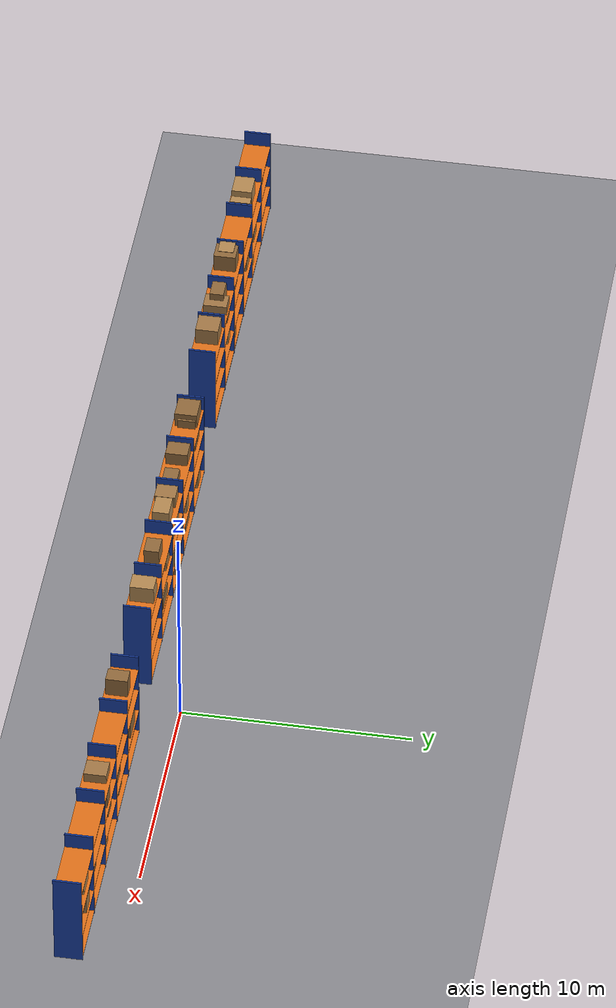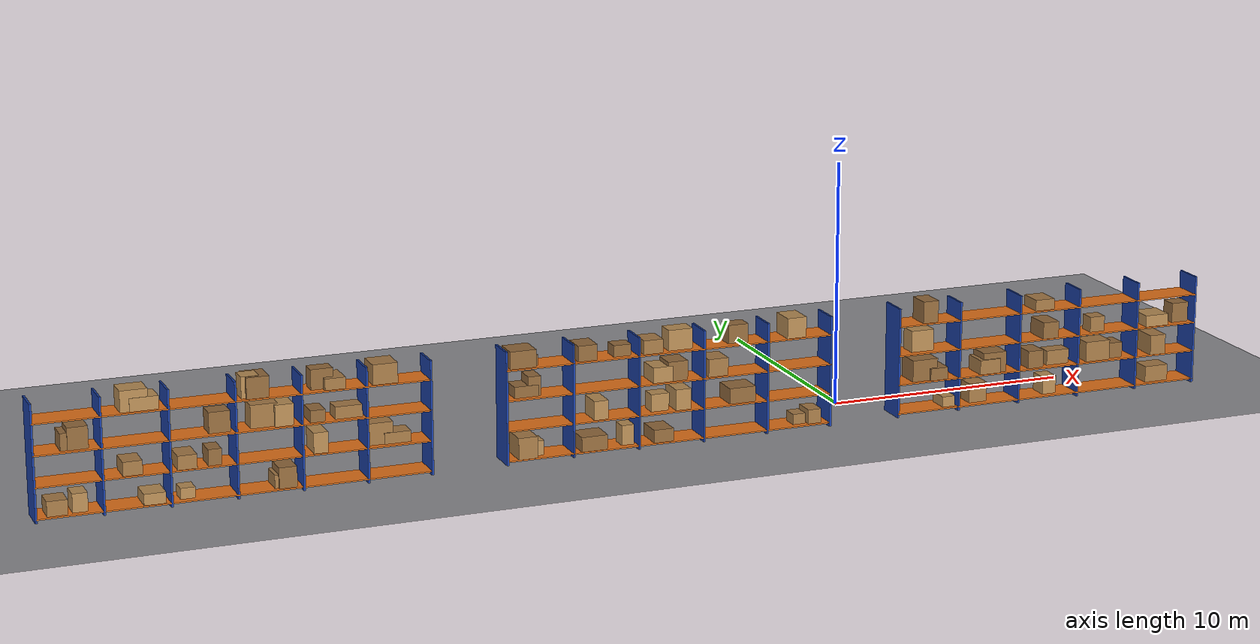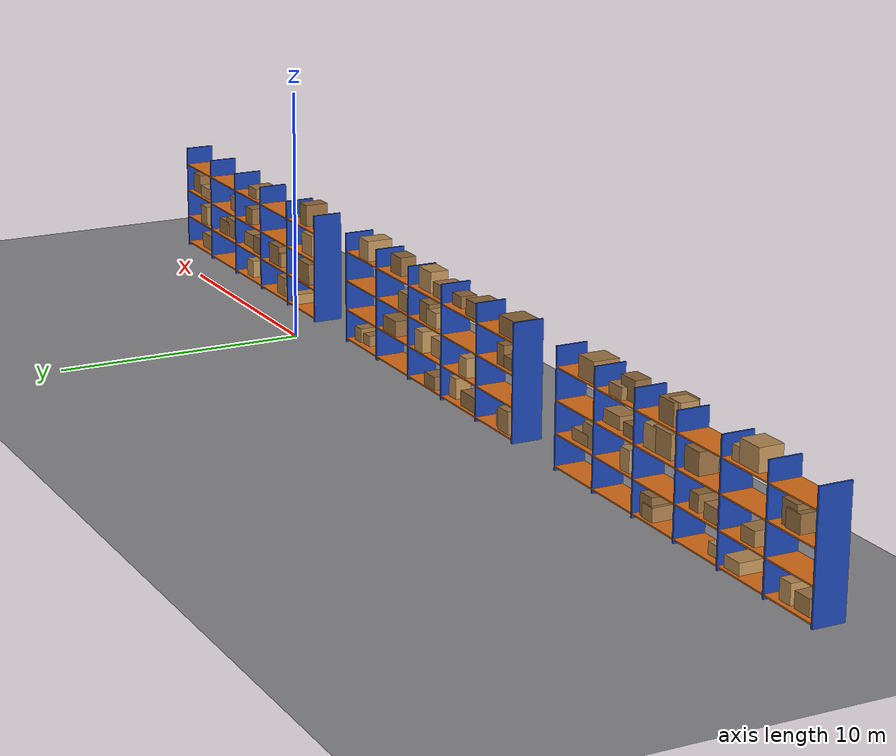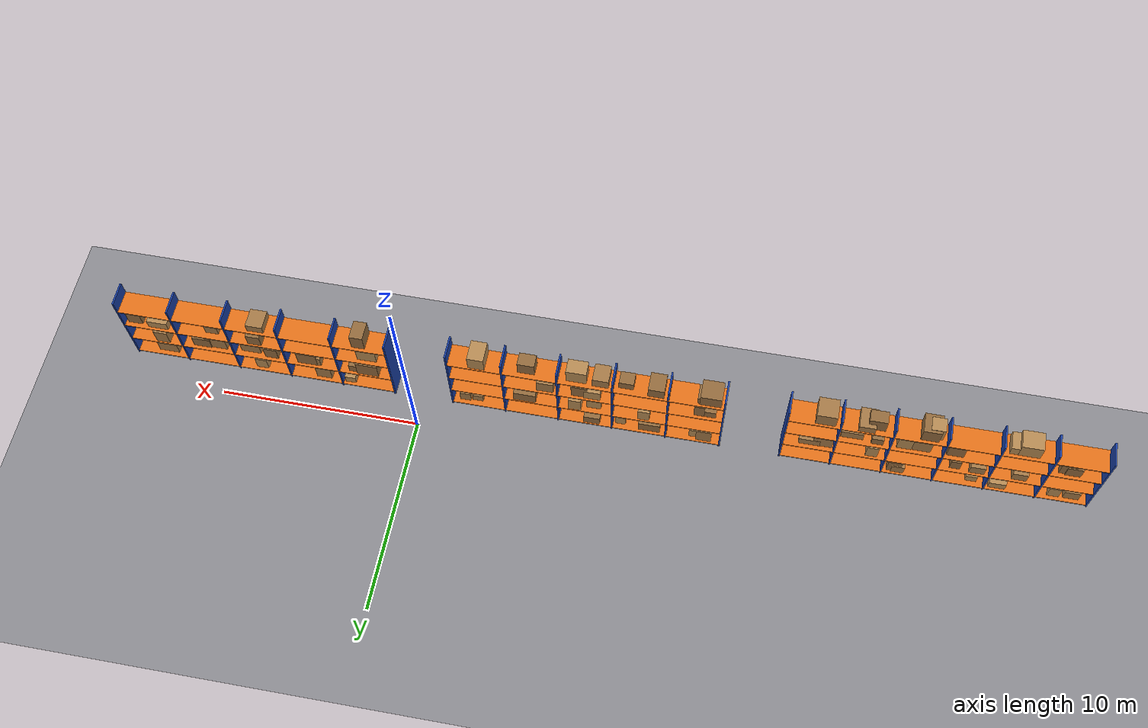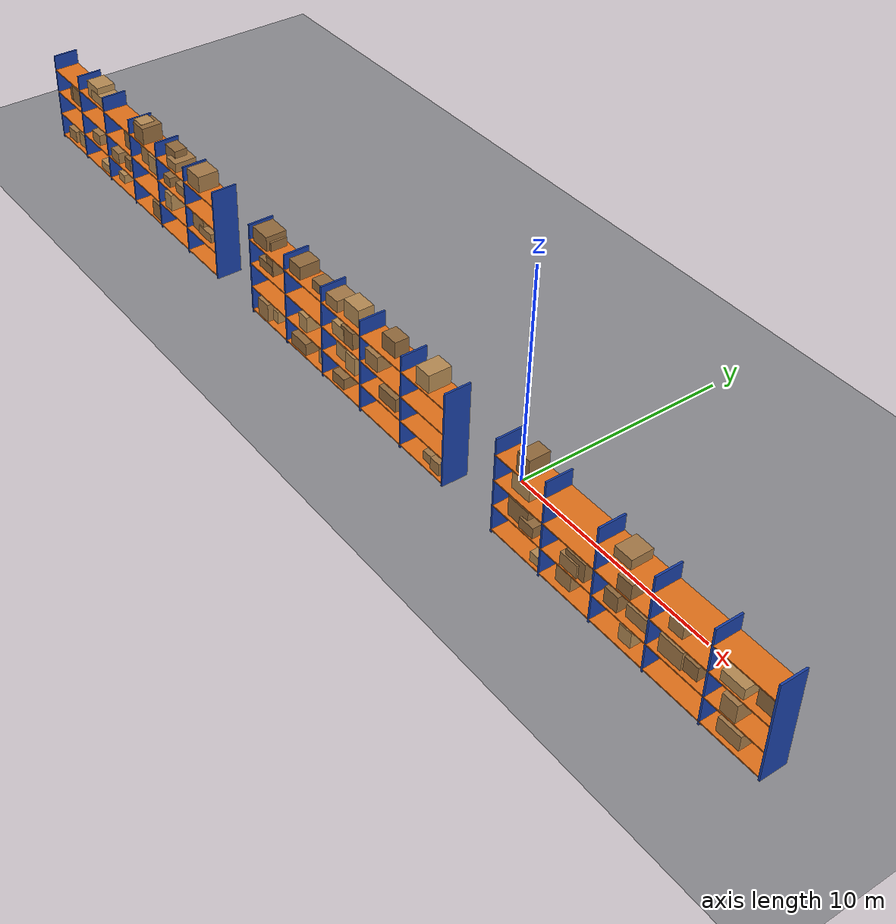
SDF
<sdf version="1.9">
 <world name="warehouse">
  <model name="ground_plane">
   <static>true</static>
   <link name="link">
    <collision name="collision">
     <geometry><plane><normal>0 0 1</normal><size>1 1</size></plane></geometry>
    </collision>
    <visual name="visual">
     <geometry><plane><normal>0 0 1</normal><size>200 100</size></plane></geometry>
     <material>
      <ambient>0.55 0.55 0.57 1</ambient>
      <diffuse>0.55 0.55 0.57 1</diffuse>
      <specular>0.1 0.1 0.1 1</specular>
     </material>
    </visual>
   </link>
  </model>
  <model name="rack12">
   <static>true</static>
   <link name="link">
    <collision name="up0_c">
     <pose>-33.000 -2.100 2.250 0 0 0</pose>
     <geometry><box><size>0.080 1.200 4.500</size></box></geometry>
    </collision>
    <visual name="up0_v">
     <pose>-33.000 -2.100 2.250 0 0 0</pose>
     <geometry><box><size>0.080 1.200 4.500</size></box></geometry>
     <material>
      <ambient>0.1 0.25 0.65 1</ambient>
      <diffuse>0.1 0.25 0.65 1</diffuse>
      <specular>0.1 0.1 0.1 1</specular>
     </material>
    </visual>
    <collision name="up1_c">
     <pose>-30.500 -2.100 2.250 0 0 0</pose>
     <geometry><box><size>0.080 1.200 4.500</size></box></geometry>
    </collision>
    <visual name="up1_v">
     <pose>-30.500 -2.100 2.250 0 0 0</pose>
     <geometry><box><size>0.080 1.200 4.500</size></box></geometry>
     <material>
      <ambient>0.1 0.25 0.65 1</ambient>
      <diffuse>0.1 0.25 0.65 1</diffuse>
      <specular>0.1 0.1 0.1 1</specular>
     </material>
    </visual>
    <collision name="up2_c">
     <pose>-28.000 -2.100 2.250 0 0 0</pose>
     <geometry><box><size>0.080 1.200 4.500</size></box></geometry>
    </collision>
    <visual name="up2_v">
     <pose>-28.000 -2.100 2.250 0 0 0</pose>
     <geometry><box><size>0.080 1.200 4.500</size></box></geometry>
     <material>
      <ambient>0.1 0.25 0.65 1</ambient>
      <diffuse>0.1 0.25 0.65 1</diffuse>
      <specular>0.1 0.1 0.1 1</specular>
     </material>
    </visual>
    <collision name="up3_c">
     <pose>-25.500 -2.100 2.250 0 0 0</pose>
     <geometry><box><size>0.080 1.200 4.500</size></box></geometry>
    </collision>
    <visual name="up3_v">
     <pose>-25.500 -2.100 2.250 0 0 0</pose>
     <geometry><box><size>0.080 1.200 4.500</size></box></geometry>
     <material>
      <ambient>0.1 0.25 0.65 1</ambient>
      <diffuse>0.1 0.25 0.65 1</diffuse>
      <specular>0.1 0.1 0.1 1</specular>
     </material>
    </visual>
    <collision name="up4_c">
     <pose>-23.000 -2.100 2.250 0 0 0</pose>
     <geometry><box><size>0.080 1.200 4.500</size></box></geometry>
    </collision>
    <visual name="up4_v">
     <pose>-23.000 -2.100 2.250 0 0 0</pose>
     <geometry><box><size>0.080 1.200 4.500</size></box></geometry>
     <material>
      <ambient>0.1 0.25 0.65 1</ambient>
      <diffuse>0.1 0.25 0.65 1</diffuse>
      <specular>0.1 0.1 0.1 1</specular>
     </material>
    </visual>
    <collision name="up5_c">
     <pose>-20.500 -2.100 2.250 0 0 0</pose>
     <geometry><box><size>0.080 1.200 4.500</size></box></geometry>
    </collision>
    <visual name="up5_v">
     <pose>-20.500 -2.100 2.250 0 0 0</pose>
     <geometry><box><size>0.080 1.200 4.500</size></box></geometry>
     <material>
      <ambient>0.1 0.25 0.65 1</ambient>
      <diffuse>0.1 0.25 0.65 1</diffuse>
      <specular>0.1 0.1 0.1 1</specular>
     </material>
    </visual>
    <collision name="up6_c">
     <pose>-18.000 -2.100 2.250 0 0 0</pose>
     <geometry><box><size>0.080 1.200 4.500</size></box></geometry>
    </collision>
    <visual name="up6_v">
     <pose>-18.000 -2.100 2.250 0 0 0</pose>
     <geometry><box><size>0.080 1.200 4.500</size></box></geometry>
     <material>
      <ambient>0.1 0.25 0.65 1</ambient>
      <diffuse>0.1 0.25 0.65 1</diffuse>
      <specular>0.1 0.1 0.1 1</specular>
     </material>
    </visual>
    <collision name="sh0_c">
     <pose>-25.500 -2.100 0.150 0 0 0</pose>
     <geometry><box><size>15.000 1.200 0.050</size></box></geometry>
    </collision>
    <visual name="sh0_v">
     <pose>-25.500 -2.100 0.150 0 0 0</pose>
     <geometry><box><size>15.000 1.200 0.050</size></box></geometry>
     <material>
      <ambient>0.9 0.45 0.1 1</ambient>
      <diffuse>0.9 0.45 0.1 1</diffuse>
      <specular>0.1 0.1 0.1 1</specular>
     </material>
    </visual>
    <collision name="sh1_c">
     <pose>-25.500 -2.100 1.350 0 0 0</pose>
     <geometry><box><size>15.000 1.200 0.050</size></box></geometry>
    </collision>
    <visual name="sh1_v">
     <pose>-25.500 -2.100 1.350 0 0 0</pose>
     <geometry><box><size>15.000 1.200 0.050</size></box></geometry>
     <material>
      <ambient>0.9 0.45 0.1 1</ambient>
      <diffuse>0.9 0.45 0.1 1</diffuse>
      <specular>0.1 0.1 0.1 1</specular>
     </material>
    </visual>
    <collision name="sh2_c">
     <pose>-25.500 -2.100 2.550 0 0 0</pose>
     <geometry><box><size>15.000 1.200 0.050</size></box></geometry>
    </collision>
    <visual name="sh2_v">
     <pose>-25.500 -2.100 2.550 0 0 0</pose>
     <geometry><box><size>15.000 1.200 0.050</size></box></geometry>
     <material>
      <ambient>0.9 0.45 0.1 1</ambient>
      <diffuse>0.9 0.45 0.1 1</diffuse>
      <specular>0.1 0.1 0.1 1</specular>
     </material>
    </visual>
    <collision name="sh3_c">
     <pose>-25.500 -2.100 3.750 0 0 0</pose>
     <geometry><box><size>15.000 1.200 0.050</size></box></geometry>
    </collision>
    <visual name="sh3_v">
     <pose>-25.500 -2.100 3.750 0 0 0</pose>
     <geometry><box><size>15.000 1.200 0.050</size></box></geometry>
     <material>
      <ambient>0.9 0.45 0.1 1</ambient>
      <diffuse>0.9 0.45 0.1 1</diffuse>
      <specular>0.1 0.1 0.1 1</specular>
     </material>
    </visual>
    <collision name="c0_c">
     <pose>-31.344 -2.088 0.539 0 0 0</pose>
     <geometry><box><size>0.571 0.790 0.727</size></box></geometry>
    </collision>
    <visual name="c0_v">
     <pose>-31.344 -2.088 0.539 0 0 0</pose>
     <geometry><box><size>0.571 0.790 0.727</size></box></geometry>
     <material>
      <ambient>0.72 0.55 0.33 1</ambient>
      <diffuse>0.72 0.55 0.33 1</diffuse>
      <specular>0.1 0.1 0.1 1</specular>
     </material>
    </visual>
    <collision name="c1_c">
     <pose>-32.199 -2.141 0.466 0 0 0</pose>
     <geometry><box><size>0.770 0.867 0.582</size></box></geometry>
    </collision>
    <visual name="c1_v">
     <pose>-32.199 -2.141 0.466 0 0 0</pose>
     <geometry><box><size>0.770 0.867 0.582</size></box></geometry>
     <material>
      <ambient>0.65 0.48 0.28 1</ambient>
      <diffuse>0.65 0.48 0.28 1</diffuse>
      <specular>0.1 0.1 0.1 1</specular>
     </material>
    </visual>
    <collision name="c2_c">
     <pose>-31.604 -2.091 2.905 0 0 0</pose>
     <geometry><box><size>0.738 0.838 0.661</size></box></geometry>
    </collision>
    <visual name="c2_v">
     <pose>-31.604 -2.091 2.905 0 0 0</pose>
     <geometry><box><size>0.738 0.838 0.661</size></box></geometry>
     <material>
      <ambient>0.58 0.42 0.24 1</ambient>
      <diffuse>0.58 0.42 0.24 1</diffuse>
      <specular>0.1 0.1 0.1 1</specular>
     </material>
    </visual>
    <collision name="c3_c">
     <pose>-31.328 -2.133 3.003 0 0 0</pose>
     <geometry><box><size>0.770 0.795 0.856</size></box></geometry>
    </collision>
    <visual name="c3_v">
     <pose>-31.328 -2.133 3.003 0 0 0</pose>
     <geometry><box><size>0.770 0.795 0.856</size></box></geometry>
     <material>
      <ambient>0.58 0.42 0.24 1</ambient>
      <diffuse>0.58 0.42 0.24 1</diffuse>
      <specular>0.1 0.1 0.1 1</specular>
     </material>
    </visual>
    <collision name="c4_c">
     <pose>-28.622 -2.127 0.391 0 0 0</pose>
     <geometry><box><size>0.834 0.999 0.432</size></box></geometry>
    </collision>
    <visual name="c4_v">
     <pose>-28.622 -2.127 0.391 0 0 0</pose>
     <geometry><box><size>0.834 0.999 0.432</size></box></geometry>
     <material>
      <ambient>0.72 0.55 0.33 1</ambient>
      <diffuse>0.72 0.55 0.33 1</diffuse>
      <specular>0.1 0.1 0.1 1</specular>
     </material>
    </visual>
    <collision name="c5_c">
     <pose>-29.392 -2.117 1.645 0 0 0</pose>
     <geometry><box><size>0.733 0.974 0.539</size></box></geometry>
    </collision>
    <visual name="c5_v">
     <pose>-29.392 -2.117 1.645 0 0 0</pose>
     <geometry><box><size>0.733 0.974 0.539</size></box></geometry>
     <material>
      <ambient>0.65 0.48 0.28 1</ambient>
      <diffuse>0.65 0.48 0.28 1</diffuse>
      <specular>0.1 0.1 0.1 1</specular>
     </material>
    </visual>
    <collision name="c6_c">
     <pose>-29.243 -2.118 4.189 0 0 0</pose>
     <geometry><box><size>1.030 0.907 0.828</size></box></geometry>
    </collision>
    <visual name="c6_v">
     <pose>-29.243 -2.118 4.189 0 0 0</pose>
     <geometry><box><size>1.030 0.907 0.828</size></box></geometry>
     <material>
      <ambient>0.72 0.55 0.33 1</ambient>
      <diffuse>0.72 0.55 0.33 1</diffuse>
      <specular>0.1 0.1 0.1 1</specular>
     </material>
    </visual>
    <collision name="c7_c">
     <pose>-28.871 -2.128 4.031 0 0 0</pose>
     <geometry><box><size>1.083 0.906 0.512</size></box></geometry>
    </collision>
    <visual name="c7_v">
     <pose>-28.871 -2.128 4.031 0 0 0</pose>
     <geometry><box><size>1.083 0.906 0.512</size></box></geometry>
     <material>
      <ambient>0.72 0.55 0.33 1</ambient>
      <diffuse>0.72 0.55 0.33 1</diffuse>
      <specular>0.1 0.1 0.1 1</specular>
     </material>
    </visual>
    <collision name="c8_c">
     <pose>-27.355 -2.113 0.388 0 0 0</pose>
     <geometry><box><size>0.562 0.651 0.426</size></box></geometry>
    </collision>
    <visual name="c8_v">
     <pose>-27.355 -2.113 0.388 0 0 0</pose>
     <geometry><box><size>0.562 0.651 0.426</size></box></geometry>
     <material>
      <ambient>0.72 0.55 0.33 1</ambient>
      <diffuse>0.72 0.55 0.33 1</diffuse>
      <specular>0.1 0.1 0.1 1</specular>
     </material>
    </visual>
    <collision name="c9_c">
     <pose>-26.319 -2.120 1.686 0 0 0</pose>
     <geometry><box><size>0.508 0.844 0.623</size></box></geometry>
    </collision>
    <visual name="c9_v">
     <pose>-26.319 -2.120 1.686 0 0 0</pose>
     <geometry><box><size>0.508 0.844 0.623</size></box></geometry>
     <material>
      <ambient>0.58 0.42 0.24 1</ambient>
      <diffuse>0.58 0.42 0.24 1</diffuse>
      <specular>0.1 0.1 0.1 1</specular>
     </material>
    </visual>
    <collision name="c10_c">
     <pose>-27.377 -2.132 1.647 0 0 0</pose>
     <geometry><box><size>0.732 1.025 0.545</size></box></geometry>
    </collision>
    <visual name="c10_v">
     <pose>-27.377 -2.132 1.647 0 0 0</pose>
     <geometry><box><size>0.732 1.025 0.545</size></box></geometry>
     <material>
      <ambient>0.65 0.48 0.28 1</ambient>
      <diffuse>0.65 0.48 0.28 1</diffuse>
      <specular>0.1 0.1 0.1 1</specular>
     </material>
    </visual>
    <collision name="c11_c">
     <pose>-26.083 -2.094 2.981 0 0 0</pose>
     <geometry><box><size>0.822 0.758 0.812</size></box></geometry>
    </collision>
    <visual name="c11_v">
     <pose>-26.083 -2.094 2.981 0 0 0</pose>
     <geometry><box><size>0.822 0.758 0.812</size></box></geometry>
     <material>
      <ambient>0.58 0.42 0.24 1</ambient>
      <diffuse>0.58 0.42 0.24 1</diffuse>
      <specular>0.1 0.1 0.1 1</specular>
     </material>
    </visual>
    <collision name="c12_c">
     <pose>-23.595 -2.133 0.581 0 0 0</pose>
     <geometry><box><size>0.694 0.946 0.812</size></box></geometry>
    </collision>
    <visual name="c12_v">
     <pose>-23.595 -2.133 0.581 0 0 0</pose>
     <geometry><box><size>0.694 0.946 0.812</size></box></geometry>
     <material>
      <ambient>0.58 0.42 0.24 1</ambient>
      <diffuse>0.58 0.42 0.24 1</diffuse>
      <specular>0.1 0.1 0.1 1</specular>
     </material>
    </visual>
    <collision name="c13_c">
     <pose>-23.779 -2.059 0.436 0 0 0</pose>
     <geometry><box><size>0.620 0.897 0.523</size></box></geometry>
    </collision>
    <visual name="c13_v">
     <pose>-23.779 -2.059 0.436 0 0 0</pose>
     <geometry><box><size>0.620 0.897 0.523</size></box></geometry>
     <material>
      <ambient>0.65 0.48 0.28 1</ambient>
      <diffuse>0.65 0.48 0.28 1</diffuse>
      <specular>0.1 0.1 0.1 1</specular>
     </material>
    </visual>
    <collision name="c14_c">
     <pose>-23.659 -2.129 2.995 0 0 0</pose>
     <geometry><box><size>0.716 0.900 0.840</size></box></geometry>
    </collision>
    <visual name="c14_v">
     <pose>-23.659 -2.129 2.995 0 0 0</pose>
     <geometry><box><size>0.716 0.900 0.840</size></box></geometry>
     <material>
      <ambient>0.72 0.55 0.33 1</ambient>
      <diffuse>0.72 0.55 0.33 1</diffuse>
      <specular>0.1 0.1 0.1 1</specular>
     </material>
    </visual>
    <collision name="c15_c">
     <pose>-24.395 -2.073 3.024 0 0 0</pose>
     <geometry><box><size>1.044 0.757 0.898</size></box></geometry>
    </collision>
    <visual name="c15_v">
     <pose>-24.395 -2.073 3.024 0 0 0</pose>
     <geometry><box><size>1.044 0.757 0.898</size></box></geometry>
     <material>
      <ambient>0.65 0.48 0.28 1</ambient>
      <diffuse>0.65 0.48 0.28 1</diffuse>
      <specular>0.1 0.1 0.1 1</specular>
     </material>
    </visual>
    <collision name="c16_c">
     <pose>-24.649 -2.143 4.185 0 0 0</pose>
     <geometry><box><size>0.863 0.990 0.820</size></box></geometry>
    </collision>
    <visual name="c16_v">
     <pose>-24.649 -2.143 4.185 0 0 0</pose>
     <geometry><box><size>0.863 0.990 0.820</size></box></geometry>
     <material>
      <ambient>0.58 0.42 0.24 1</ambient>
      <diffuse>0.58 0.42 0.24 1</diffuse>
      <specular>0.1 0.1 0.1 1</specular>
     </material>
    </visual>
    <collision name="c17_c">
     <pose>-24.900 -2.150 4.193 0 0 0</pose>
     <geometry><box><size>0.692 0.702 0.836</size></box></geometry>
    </collision>
    <visual name="c17_v">
     <pose>-24.900 -2.150 4.193 0 0 0</pose>
     <geometry><box><size>0.692 0.702 0.836</size></box></geometry>
     <material>
      <ambient>0.72 0.55 0.33 1</ambient>
      <diffuse>0.72 0.55 0.33 1</diffuse>
      <specular>0.1 0.1 0.1 1</specular>
     </material>
    </visual>
    <collision name="c18_c">
     <pose>-22.306 -2.116 1.779 0 0 0</pose>
     <geometry><box><size>0.567 0.995 0.809</size></box></geometry>
    </collision>
    <visual name="c18_v">
     <pose>-22.306 -2.116 1.779 0 0 0</pose>
     <geometry><box><size>0.567 0.995 0.809</size></box></geometry>
     <material>
      <ambient>0.72 0.55 0.33 1</ambient>
      <diffuse>0.72 0.55 0.33 1</diffuse>
      <specular>0.1 0.1 0.1 1</specular>
     </material>
    </visual>
    <collision name="c19_c">
     <pose>-21.170 -2.134 2.815 0 0 0</pose>
     <geometry><box><size>1.065 0.704 0.479</size></box></geometry>
    </collision>
    <visual name="c19_v">
     <pose>-21.170 -2.134 2.815 0 0 0</pose>
     <geometry><box><size>1.065 0.704 0.479</size></box></geometry>
     <material>
      <ambient>0.65 0.48 0.28 1</ambient>
      <diffuse>0.65 0.48 0.28 1</diffuse>
      <specular>0.1 0.1 0.1 1</specular>
     </material>
    </visual>
    <collision name="c20_c">
     <pose>-22.383 -2.117 2.807 0 0 0</pose>
     <geometry><box><size>0.572 0.892 0.465</size></box></geometry>
    </collision>
    <visual name="c20_v">
     <pose>-22.383 -2.117 2.807 0 0 0</pose>
     <geometry><box><size>0.572 0.892 0.465</size></box></geometry>
     <material>
      <ambient>0.58 0.42 0.24 1</ambient>
      <diffuse>0.58 0.42 0.24 1</diffuse>
      <specular>0.1 0.1 0.1 1</specular>
     </material>
    </visual>
    <collision name="c21_c">
     <pose>-22.145 -2.081 4.170 0 0 0</pose>
     <geometry><box><size>0.857 0.610 0.790</size></box></geometry>
    </collision>
    <visual name="c21_v">
     <pose>-22.145 -2.081 4.170 0 0 0</pose>
     <geometry><box><size>0.857 0.610 0.790</size></box></geometry>
     <material>
      <ambient>0.58 0.42 0.24 1</ambient>
      <diffuse>0.58 0.42 0.24 1</diffuse>
      <specular>0.1 0.1 0.1 1</specular>
     </material>
    </visual>
    <collision name="c22_c">
     <pose>-21.700 -2.094 3.997 0 0 0</pose>
     <geometry><box><size>0.793 1.061 0.445</size></box></geometry>
    </collision>
    <visual name="c22_v">
     <pose>-21.700 -2.094 3.997 0 0 0</pose>
     <geometry><box><size>0.793 1.061 0.445</size></box></geometry>
     <material>
      <ambient>0.65 0.48 0.28 1</ambient>
      <diffuse>0.65 0.48 0.28 1</diffuse>
      <specular>0.1 0.1 0.1 1</specular>
     </material>
    </visual>
    <collision name="c23_c">
     <pose>-19.281 -2.097 1.591 0 0 0</pose>
     <geometry><box><size>1.036 0.774 0.432</size></box></geometry>
    </collision>
    <visual name="c23_v">
     <pose>-19.281 -2.097 1.591 0 0 0</pose>
     <geometry><box><size>1.036 0.774 0.432</size></box></geometry>
     <material>
      <ambient>0.65 0.48 0.28 1</ambient>
      <diffuse>0.65 0.48 0.28 1</diffuse>
      <specular>0.1 0.1 0.1 1</specular>
     </material>
    </visual>
    <collision name="c24_c">
     <pose>-19.927 -2.080 1.802 0 0 0</pose>
     <geometry><box><size>0.931 0.703 0.854</size></box></geometry>
    </collision>
    <visual name="c24_v">
     <pose>-19.927 -2.080 1.802 0 0 0</pose>
     <geometry><box><size>0.931 0.703 0.854</size></box></geometry>
     <material>
      <ambient>0.65 0.48 0.28 1</ambient>
      <diffuse>0.65 0.48 0.28 1</diffuse>
      <specular>0.1 0.1 0.1 1</specular>
     </material>
    </visual>
    <collision name="c25_c">
     <pose>-19.765 -2.110 4.168 0 0 0</pose>
     <geometry><box><size>0.978 1.007 0.786</size></box></geometry>
    </collision>
    <visual name="c25_v">
     <pose>-19.765 -2.110 4.168 0 0 0</pose>
     <geometry><box><size>0.978 1.007 0.786</size></box></geometry>
     <material>
      <ambient>0.65 0.48 0.28 1</ambient>
      <diffuse>0.65 0.48 0.28 1</diffuse>
      <specular>0.1 0.1 0.1 1</specular>
     </material>
    </visual>
   </link>
  </model>
  <model name="rack13">
   <static>true</static>
   <link name="link">
    <collision name="up0_c">
     <pose>-15.000 -2.100 2.250 0 0 0</pose>
     <geometry><box><size>0.080 1.200 4.500</size></box></geometry>
    </collision>
    <visual name="up0_v">
     <pose>-15.000 -2.100 2.250 0 0 0</pose>
     <geometry><box><size>0.080 1.200 4.500</size></box></geometry>
     <material>
      <ambient>0.1 0.25 0.65 1</ambient>
      <diffuse>0.1 0.25 0.65 1</diffuse>
      <specular>0.1 0.1 0.1 1</specular>
     </material>
    </visual>
    <collision name="up1_c">
     <pose>-12.300 -2.100 2.250 0 0 0</pose>
     <geometry><box><size>0.080 1.200 4.500</size></box></geometry>
    </collision>
    <visual name="up1_v">
     <pose>-12.300 -2.100 2.250 0 0 0</pose>
     <geometry><box><size>0.080 1.200 4.500</size></box></geometry>
     <material>
      <ambient>0.1 0.25 0.65 1</ambient>
      <diffuse>0.1 0.25 0.65 1</diffuse>
      <specular>0.1 0.1 0.1 1</specular>
     </material>
    </visual>
    <collision name="up2_c">
     <pose>-9.600 -2.100 2.250 0 0 0</pose>
     <geometry><box><size>0.080 1.200 4.500</size></box></geometry>
    </collision>
    <visual name="up2_v">
     <pose>-9.600 -2.100 2.250 0 0 0</pose>
     <geometry><box><size>0.080 1.200 4.500</size></box></geometry>
     <material>
      <ambient>0.1 0.25 0.65 1</ambient>
      <diffuse>0.1 0.25 0.65 1</diffuse>
      <specular>0.1 0.1 0.1 1</specular>
     </material>
    </visual>
    <collision name="up3_c">
     <pose>-6.900 -2.100 2.250 0 0 0</pose>
     <geometry><box><size>0.080 1.200 4.500</size></box></geometry>
    </collision>
    <visual name="up3_v">
     <pose>-6.900 -2.100 2.250 0 0 0</pose>
     <geometry><box><size>0.080 1.200 4.500</size></box></geometry>
     <material>
      <ambient>0.1 0.25 0.65 1</ambient>
      <diffuse>0.1 0.25 0.65 1</diffuse>
      <specular>0.1 0.1 0.1 1</specular>
     </material>
    </visual>
    <collision name="up4_c">
     <pose>-4.200 -2.100 2.250 0 0 0</pose>
     <geometry><box><size>0.080 1.200 4.500</size></box></geometry>
    </collision>
    <visual name="up4_v">
     <pose>-4.200 -2.100 2.250 0 0 0</pose>
     <geometry><box><size>0.080 1.200 4.500</size></box></geometry>
     <material>
      <ambient>0.1 0.25 0.65 1</ambient>
      <diffuse>0.1 0.25 0.65 1</diffuse>
      <specular>0.1 0.1 0.1 1</specular>
     </material>
    </visual>
    <collision name="up5_c">
     <pose>-1.500 -2.100 2.250 0 0 0</pose>
     <geometry><box><size>0.080 1.200 4.500</size></box></geometry>
    </collision>
    <visual name="up5_v">
     <pose>-1.500 -2.100 2.250 0 0 0</pose>
     <geometry><box><size>0.080 1.200 4.500</size></box></geometry>
     <material>
      <ambient>0.1 0.25 0.65 1</ambient>
      <diffuse>0.1 0.25 0.65 1</diffuse>
      <specular>0.1 0.1 0.1 1</specular>
     </material>
    </visual>
    <collision name="sh0_c">
     <pose>-8.250 -2.100 0.150 0 0 0</pose>
     <geometry><box><size>13.500 1.200 0.050</size></box></geometry>
    </collision>
    <visual name="sh0_v">
     <pose>-8.250 -2.100 0.150 0 0 0</pose>
     <geometry><box><size>13.500 1.200 0.050</size></box></geometry>
     <material>
      <ambient>0.9 0.45 0.1 1</ambient>
      <diffuse>0.9 0.45 0.1 1</diffuse>
      <specular>0.1 0.1 0.1 1</specular>
     </material>
    </visual>
    <collision name="sh1_c">
     <pose>-8.250 -2.100 1.350 0 0 0</pose>
     <geometry><box><size>13.500 1.200 0.050</size></box></geometry>
    </collision>
    <visual name="sh1_v">
     <pose>-8.250 -2.100 1.350 0 0 0</pose>
     <geometry><box><size>13.500 1.200 0.050</size></box></geometry>
     <material>
      <ambient>0.9 0.45 0.1 1</ambient>
      <diffuse>0.9 0.45 0.1 1</diffuse>
      <specular>0.1 0.1 0.1 1</specular>
     </material>
    </visual>
    <collision name="sh2_c">
     <pose>-8.250 -2.100 2.550 0 0 0</pose>
     <geometry><box><size>13.500 1.200 0.050</size></box></geometry>
    </collision>
    <visual name="sh2_v">
     <pose>-8.250 -2.100 2.550 0 0 0</pose>
     <geometry><box><size>13.500 1.200 0.050</size></box></geometry>
     <material>
      <ambient>0.9 0.45 0.1 1</ambient>
      <diffuse>0.9 0.45 0.1 1</diffuse>
      <specular>0.1 0.1 0.1 1</specular>
     </material>
    </visual>
    <collision name="sh3_c">
     <pose>-8.250 -2.100 3.750 0 0 0</pose>
     <geometry><box><size>13.500 1.200 0.050</size></box></geometry>
    </collision>
    <visual name="sh3_v">
     <pose>-8.250 -2.100 3.750 0 0 0</pose>
     <geometry><box><size>13.500 1.200 0.050</size></box></geometry>
     <material>
      <ambient>0.9 0.45 0.1 1</ambient>
      <diffuse>0.9 0.45 0.1 1</diffuse>
      <specular>0.1 0.1 0.1 1</specular>
     </material>
    </visual>
    <collision name="c0_c">
     <pose>-13.892 -2.075 0.468 0 0 0</pose>
     <geometry><box><size>0.900 0.671 0.586</size></box></geometry>
    </collision>
    <visual name="c0_v">
     <pose>-13.892 -2.075 0.468 0 0 0</pose>
     <geometry><box><size>0.900 0.671 0.586</size></box></geometry>
     <material>
      <ambient>0.72 0.55 0.33 1</ambient>
      <diffuse>0.72 0.55 0.33 1</diffuse>
      <specular>0.1 0.1 0.1 1</specular>
     </material>
    </visual>
    <collision name="c1_c">
     <pose>-14.179 -2.136 0.606 0 0 0</pose>
     <geometry><box><size>0.762 1.083 0.861</size></box></geometry>
    </collision>
    <visual name="c1_v">
     <pose>-14.179 -2.136 0.606 0 0 0</pose>
     <geometry><box><size>0.762 1.083 0.861</size></box></geometry>
     <material>
      <ambient>0.65 0.48 0.28 1</ambient>
      <diffuse>0.65 0.48 0.28 1</diffuse>
      <specular>0.1 0.1 0.1 1</specular>
     </material>
    </visual>
    <collision name="c2_c">
     <pose>-14.151 -2.068 2.799 0 0 0</pose>
     <geometry><box><size>0.971 0.820 0.448</size></box></geometry>
    </collision>
    <visual name="c2_v">
     <pose>-14.151 -2.068 2.799 0 0 0</pose>
     <geometry><box><size>0.971 0.820 0.448</size></box></geometry>
     <material>
      <ambient>0.58 0.42 0.24 1</ambient>
      <diffuse>0.58 0.42 0.24 1</diffuse>
      <specular>0.1 0.1 0.1 1</specular>
     </material>
    </visual>
    <collision name="c3_c">
     <pose>-13.819 -2.064 2.971 0 0 0</pose>
     <geometry><box><size>0.505 0.815 0.793</size></box></geometry>
    </collision>
    <visual name="c3_v">
     <pose>-13.819 -2.064 2.971 0 0 0</pose>
     <geometry><box><size>0.505 0.815 0.793</size></box></geometry>
     <material>
      <ambient>0.58 0.42 0.24 1</ambient>
      <diffuse>0.58 0.42 0.24 1</diffuse>
      <specular>0.1 0.1 0.1 1</specular>
     </material>
    </visual>
    <collision name="c4_c">
     <pose>-14.309 -2.105 4.121 0 0 0</pose>
     <geometry><box><size>1.043 0.989 0.692</size></box></geometry>
    </collision>
    <visual name="c4_v">
     <pose>-14.309 -2.105 4.121 0 0 0</pose>
     <geometry><box><size>1.043 0.989 0.692</size></box></geometry>
     <material>
      <ambient>0.58 0.42 0.24 1</ambient>
      <diffuse>0.58 0.42 0.24 1</diffuse>
      <specular>0.1 0.1 0.1 1</specular>
     </material>
    </visual>
    <collision name="c5_c">
     <pose>-14.204 -2.064 3.990 0 0 0</pose>
     <geometry><box><size>1.052 0.782 0.430</size></box></geometry>
    </collision>
    <visual name="c5_v">
     <pose>-14.204 -2.064 3.990 0 0 0</pose>
     <geometry><box><size>1.052 0.782 0.430</size></box></geometry>
     <material>
      <ambient>0.58 0.42 0.24 1</ambient>
      <diffuse>0.58 0.42 0.24 1</diffuse>
      <specular>0.1 0.1 0.1 1</specular>
     </material>
    </visual>
    <collision name="c6_c">
     <pose>-11.450 -2.148 0.466 0 0 0</pose>
     <geometry><box><size>1.071 1.003 0.583</size></box></geometry>
    </collision>
    <visual name="c6_v">
     <pose>-11.450 -2.148 0.466 0 0 0</pose>
     <geometry><box><size>1.071 1.003 0.583</size></box></geometry>
     <material>
      <ambient>0.58 0.42 0.24 1</ambient>
      <diffuse>0.58 0.42 0.24 1</diffuse>
      <specular>0.1 0.1 0.1 1</specular>
     </material>
    </visual>
    <collision name="c7_c">
     <pose>-9.997 -2.107 0.574 0 0 0</pose>
     <geometry><box><size>0.516 0.634 0.798</size></box></geometry>
    </collision>
    <visual name="c7_v">
     <pose>-9.997 -2.107 0.574 0 0 0</pose>
     <geometry><box><size>0.516 0.634 0.798</size></box></geometry>
     <material>
      <ambient>0.72 0.55 0.33 1</ambient>
      <diffuse>0.72 0.55 0.33 1</diffuse>
      <specular>0.1 0.1 0.1 1</specular>
     </material>
    </visual>
    <collision name="c8_c">
     <pose>-11.155 -2.090 1.752 0 0 0</pose>
     <geometry><box><size>0.577 1.024 0.753</size></box></geometry>
    </collision>
    <visual name="c8_v">
     <pose>-11.155 -2.090 1.752 0 0 0</pose>
     <geometry><box><size>0.577 1.024 0.753</size></box></geometry>
     <material>
      <ambient>0.72 0.55 0.33 1</ambient>
      <diffuse>0.72 0.55 0.33 1</diffuse>
      <specular>0.1 0.1 0.1 1</specular>
     </material>
    </visual>
    <collision name="c9_c">
     <pose>-11.691 -2.091 4.084 0 0 0</pose>
     <geometry><box><size>0.787 0.967 0.619</size></box></geometry>
    </collision>
    <visual name="c9_v">
     <pose>-11.691 -2.091 4.084 0 0 0</pose>
     <geometry><box><size>0.787 0.967 0.619</size></box></geometry>
     <material>
      <ambient>0.58 0.42 0.24 1</ambient>
      <diffuse>0.58 0.42 0.24 1</diffuse>
      <specular>0.1 0.1 0.1 1</specular>
     </material>
    </visual>
    <collision name="c10_c">
     <pose>-10.227 -2.139 4.001 0 0 0</pose>
     <geometry><box><size>0.722 0.648 0.453</size></box></geometry>
    </collision>
    <visual name="c10_v">
     <pose>-10.227 -2.139 4.001 0 0 0</pose>
     <geometry><box><size>0.722 0.648 0.453</size></box></geometry>
     <material>
      <ambient>0.58 0.42 0.24 1</ambient>
      <diffuse>0.58 0.42 0.24 1</diffuse>
      <specular>0.1 0.1 0.1 1</specular>
     </material>
    </visual>
    <collision name="c11_c">
     <pose>-8.576 -2.089 0.434 0 0 0</pose>
     <geometry><box><size>0.807 1.056 0.517</size></box></geometry>
    </collision>
    <visual name="c11_v">
     <pose>-8.576 -2.089 0.434 0 0 0</pose>
     <geometry><box><size>0.807 1.056 0.517</size></box></geometry>
     <material>
      <ambient>0.58 0.42 0.24 1</ambient>
      <diffuse>0.58 0.42 0.24 1</diffuse>
      <specular>0.1 0.1 0.1 1</specular>
     </material>
    </visual>
    <collision name="c12_c">
     <pose>-8.644 -2.088 1.724 0 0 0</pose>
     <geometry><box><size>0.735 0.620 0.698</size></box></geometry>
    </collision>
    <visual name="c12_v">
     <pose>-8.644 -2.088 1.724 0 0 0</pose>
     <geometry><box><size>0.735 0.620 0.698</size></box></geometry>
     <material>
      <ambient>0.72 0.55 0.33 1</ambient>
      <diffuse>0.72 0.55 0.33 1</diffuse>
      <specular>0.1 0.1 0.1 1</specular>
     </material>
    </visual>
    <collision name="c13_c">
     <pose>-7.737 -2.055 1.792 0 0 0</pose>
     <geometry><box><size>0.631 1.055 0.835</size></box></geometry>
    </collision>
    <visual name="c13_v">
     <pose>-7.737 -2.055 1.792 0 0 0</pose>
     <geometry><box><size>0.631 1.055 0.835</size></box></geometry>
     <material>
      <ambient>0.72 0.55 0.33 1</ambient>
      <diffuse>0.72 0.55 0.33 1</diffuse>
      <specular>0.1 0.1 0.1 1</specular>
     </material>
    </visual>
    <collision name="c14_c">
     <pose>-8.596 -2.091 2.884 0 0 0</pose>
     <geometry><box><size>0.808 0.973 0.619</size></box></geometry>
    </collision>
    <visual name="c14_v">
     <pose>-8.596 -2.091 2.884 0 0 0</pose>
     <geometry><box><size>0.808 0.973 0.619</size></box></geometry>
     <material>
      <ambient>0.72 0.55 0.33 1</ambient>
      <diffuse>0.72 0.55 0.33 1</diffuse>
      <specular>0.1 0.1 0.1 1</specular>
     </material>
    </visual>
    <collision name="c15_c">
     <pose>-7.968 -2.109 2.965 0 0 0</pose>
     <geometry><box><size>0.806 0.929 0.780</size></box></geometry>
    </collision>
    <visual name="c15_v">
     <pose>-7.968 -2.109 2.965 0 0 0</pose>
     <geometry><box><size>0.806 0.929 0.780</size></box></geometry>
     <material>
      <ambient>0.58 0.42 0.24 1</ambient>
      <diffuse>0.58 0.42 0.24 1</diffuse>
      <specular>0.1 0.1 0.1 1</specular>
     </material>
    </visual>
    <collision name="c16_c">
     <pose>-8.999 -2.135 4.052 0 0 0</pose>
     <geometry><box><size>0.786 0.915 0.553</size></box></geometry>
    </collision>
    <visual name="c16_v">
     <pose>-8.999 -2.135 4.052 0 0 0</pose>
     <geometry><box><size>0.786 0.915 0.553</size></box></geometry>
     <material>
      <ambient>0.65 0.48 0.28 1</ambient>
      <diffuse>0.65 0.48 0.28 1</diffuse>
      <specular>0.1 0.1 0.1 1</specular>
     </material>
    </visual>
    <collision name="c17_c">
     <pose>-7.815 -2.096 4.185 0 0 0</pose>
     <geometry><box><size>0.996 0.730 0.819</size></box></geometry>
    </collision>
    <visual name="c17_v">
     <pose>-7.815 -2.096 4.185 0 0 0</pose>
     <geometry><box><size>0.996 0.730 0.819</size></box></geometry>
     <material>
      <ambient>0.72 0.55 0.33 1</ambient>
      <diffuse>0.72 0.55 0.33 1</diffuse>
      <specular>0.1 0.1 0.1 1</specular>
     </material>
    </visual>
    <collision name="c18_c">
     <pose>-5.228 -2.059 1.686 0 0 0</pose>
     <geometry><box><size>1.099 1.025 0.623</size></box></geometry>
    </collision>
    <visual name="c18_v">
     <pose>-5.228 -2.059 1.686 0 0 0</pose>
     <geometry><box><size>1.099 1.025 0.623</size></box></geometry>
     <material>
      <ambient>0.58 0.42 0.24 1</ambient>
      <diffuse>0.58 0.42 0.24 1</diffuse>
      <specular>0.1 0.1 0.1 1</specular>
     </material>
    </visual>
    <collision name="c19_c">
     <pose>-6.280 -2.104 2.931 0 0 0</pose>
     <geometry><box><size>0.823 0.985 0.711</size></box></geometry>
    </collision>
    <visual name="c19_v">
     <pose>-6.280 -2.104 2.931 0 0 0</pose>
     <geometry><box><size>0.823 0.985 0.711</size></box></geometry>
     <material>
      <ambient>0.65 0.48 0.28 1</ambient>
      <diffuse>0.65 0.48 0.28 1</diffuse>
      <specular>0.1 0.1 0.1 1</specular>
     </material>
    </visual>
    <collision name="c20_c">
     <pose>-5.375 -2.086 4.146 0 0 0</pose>
     <geometry><box><size>0.839 0.656 0.743</size></box></geometry>
    </collision>
    <visual name="c20_v">
     <pose>-5.375 -2.086 4.146 0 0 0</pose>
     <geometry><box><size>0.839 0.656 0.743</size></box></geometry>
     <material>
      <ambient>0.58 0.42 0.24 1</ambient>
      <diffuse>0.58 0.42 0.24 1</diffuse>
      <specular>0.1 0.1 0.1 1</specular>
     </material>
    </visual>
    <collision name="c21_c">
     <pose>-2.123 -2.146 0.461 0 0 0</pose>
     <geometry><box><size>0.555 0.849 0.572</size></box></geometry>
    </collision>
    <visual name="c21_v">
     <pose>-2.123 -2.146 0.461 0 0 0</pose>
     <geometry><box><size>0.555 0.849 0.572</size></box></geometry>
     <material>
      <ambient>0.65 0.48 0.28 1</ambient>
      <diffuse>0.65 0.48 0.28 1</diffuse>
      <specular>0.1 0.1 0.1 1</specular>
     </material>
    </visual>
    <collision name="c22_c">
     <pose>-2.742 -2.119 0.386 0 0 0</pose>
     <geometry><box><size>0.533 0.658 0.421</size></box></geometry>
    </collision>
    <visual name="c22_v">
     <pose>-2.742 -2.119 0.386 0 0 0</pose>
     <geometry><box><size>0.533 0.658 0.421</size></box></geometry>
     <material>
      <ambient>0.65 0.48 0.28 1</ambient>
      <diffuse>0.65 0.48 0.28 1</diffuse>
      <specular>0.1 0.1 0.1 1</specular>
     </material>
    </visual>
    <collision name="c23_c">
     <pose>-2.960 -2.089 4.185 0 0 0</pose>
     <geometry><box><size>0.802 1.049 0.820</size></box></geometry>
    </collision>
    <visual name="c23_v">
     <pose>-2.960 -2.089 4.185 0 0 0</pose>
     <geometry><box><size>0.802 1.049 0.820</size></box></geometry>
     <material>
      <ambient>0.72 0.55 0.33 1</ambient>
      <diffuse>0.72 0.55 0.33 1</diffuse>
      <specular>0.1 0.1 0.1 1</specular>
     </material>
    </visual>
   </link>
  </model>
  <model name="rack14">
   <static>true</static>
   <link name="link">
    <collision name="up0_c">
     <pose>1.500 -2.100 2.250 0 0 0</pose>
     <geometry><box><size>0.080 1.200 4.500</size></box></geometry>
    </collision>
    <visual name="up0_v">
     <pose>1.500 -2.100 2.250 0 0 0</pose>
     <geometry><box><size>0.080 1.200 4.500</size></box></geometry>
     <material>
      <ambient>0.1 0.25 0.65 1</ambient>
      <diffuse>0.1 0.25 0.65 1</diffuse>
      <specular>0.1 0.1 0.1 1</specular>
     </material>
    </visual>
    <collision name="up1_c">
     <pose>4.200 -2.100 2.250 0 0 0</pose>
     <geometry><box><size>0.080 1.200 4.500</size></box></geometry>
    </collision>
    <visual name="up1_v">
     <pose>4.200 -2.100 2.250 0 0 0</pose>
     <geometry><box><size>0.080 1.200 4.500</size></box></geometry>
     <material>
      <ambient>0.1 0.25 0.65 1</ambient>
      <diffuse>0.1 0.25 0.65 1</diffuse>
      <specular>0.1 0.1 0.1 1</specular>
     </material>
    </visual>
    <collision name="up2_c">
     <pose>6.900 -2.100 2.250 0 0 0</pose>
     <geometry><box><size>0.080 1.200 4.500</size></box></geometry>
    </collision>
    <visual name="up2_v">
     <pose>6.900 -2.100 2.250 0 0 0</pose>
     <geometry><box><size>0.080 1.200 4.500</size></box></geometry>
     <material>
      <ambient>0.1 0.25 0.65 1</ambient>
      <diffuse>0.1 0.25 0.65 1</diffuse>
      <specular>0.1 0.1 0.1 1</specular>
     </material>
    </visual>
    <collision name="up3_c">
     <pose>9.600 -2.100 2.250 0 0 0</pose>
     <geometry><box><size>0.080 1.200 4.500</size></box></geometry>
    </collision>
    <visual name="up3_v">
     <pose>9.600 -2.100 2.250 0 0 0</pose>
     <geometry><box><size>0.080 1.200 4.500</size></box></geometry>
     <material>
      <ambient>0.1 0.25 0.65 1</ambient>
      <diffuse>0.1 0.25 0.65 1</diffuse>
      <specular>0.1 0.1 0.1 1</specular>
     </material>
    </visual>
    <collision name="up4_c">
     <pose>12.300 -2.100 2.250 0 0 0</pose>
     <geometry><box><size>0.080 1.200 4.500</size></box></geometry>
    </collision>
    <visual name="up4_v">
     <pose>12.300 -2.100 2.250 0 0 0</pose>
     <geometry><box><size>0.080 1.200 4.500</size></box></geometry>
     <material>
      <ambient>0.1 0.25 0.65 1</ambient>
      <diffuse>0.1 0.25 0.65 1</diffuse>
      <specular>0.1 0.1 0.1 1</specular>
     </material>
    </visual>
    <collision name="up5_c">
     <pose>15.000 -2.100 2.250 0 0 0</pose>
     <geometry><box><size>0.080 1.200 4.500</size></box></geometry>
    </collision>
    <visual name="up5_v">
     <pose>15.000 -2.100 2.250 0 0 0</pose>
     <geometry><box><size>0.080 1.200 4.500</size></box></geometry>
     <material>
      <ambient>0.1 0.25 0.65 1</ambient>
      <diffuse>0.1 0.25 0.65 1</diffuse>
      <specular>0.1 0.1 0.1 1</specular>
     </material>
    </visual>
    <collision name="sh0_c">
     <pose>8.250 -2.100 0.150 0 0 0</pose>
     <geometry><box><size>13.500 1.200 0.050</size></box></geometry>
    </collision>
    <visual name="sh0_v">
     <pose>8.250 -2.100 0.150 0 0 0</pose>
     <geometry><box><size>13.500 1.200 0.050</size></box></geometry>
     <material>
      <ambient>0.9 0.45 0.1 1</ambient>
      <diffuse>0.9 0.45 0.1 1</diffuse>
      <specular>0.1 0.1 0.1 1</specular>
     </material>
    </visual>
    <collision name="sh1_c">
     <pose>8.250 -2.100 1.350 0 0 0</pose>
     <geometry><box><size>13.500 1.200 0.050</size></box></geometry>
    </collision>
    <visual name="sh1_v">
     <pose>8.250 -2.100 1.350 0 0 0</pose>
     <geometry><box><size>13.500 1.200 0.050</size></box></geometry>
     <material>
      <ambient>0.9 0.45 0.1 1</ambient>
      <diffuse>0.9 0.45 0.1 1</diffuse>
      <specular>0.1 0.1 0.1 1</specular>
     </material>
    </visual>
    <collision name="sh2_c">
     <pose>8.250 -2.100 2.550 0 0 0</pose>
     <geometry><box><size>13.500 1.200 0.050</size></box></geometry>
    </collision>
    <visual name="sh2_v">
     <pose>8.250 -2.100 2.550 0 0 0</pose>
     <geometry><box><size>13.500 1.200 0.050</size></box></geometry>
     <material>
      <ambient>0.9 0.45 0.1 1</ambient>
      <diffuse>0.9 0.45 0.1 1</diffuse>
      <specular>0.1 0.1 0.1 1</specular>
     </material>
    </visual>
    <collision name="sh3_c">
     <pose>8.250 -2.100 3.750 0 0 0</pose>
     <geometry><box><size>13.500 1.200 0.050</size></box></geometry>
    </collision>
    <visual name="sh3_v">
     <pose>8.250 -2.100 3.750 0 0 0</pose>
     <geometry><box><size>13.500 1.200 0.050</size></box></geometry>
     <material>
      <ambient>0.9 0.45 0.1 1</ambient>
      <diffuse>0.9 0.45 0.1 1</diffuse>
      <specular>0.1 0.1 0.1 1</specular>
     </material>
    </visual>
    <collision name="c0_c">
     <pose>3.813 -2.107 0.389 0 0 0</pose>
     <geometry><box><size>0.542 0.898 0.428</size></box></geometry>
    </collision>
    <visual name="c0_v">
     <pose>3.813 -2.107 0.389 0 0 0</pose>
     <geometry><box><size>0.542 0.898 0.428</size></box></geometry>
     <material>
      <ambient>0.72 0.55 0.33 1</ambient>
      <diffuse>0.72 0.55 0.33 1</diffuse>
      <specular>0.1 0.1 0.1 1</specular>
     </material>
    </visual>
    <collision name="c1_c">
     <pose>3.315 -2.147 1.621 0 0 0</pose>
     <geometry><box><size>0.762 1.005 0.493</size></box></geometry>
    </collision>
    <visual name="c1_v">
     <pose>3.315 -2.147 1.621 0 0 0</pose>
     <geometry><box><size>0.762 1.005 0.493</size></box></geometry>
     <material>
      <ambient>0.58 0.42 0.24 1</ambient>
      <diffuse>0.58 0.42 0.24 1</diffuse>
      <specular>0.1 0.1 0.1 1</specular>
     </material>
    </visual>
    <collision name="c2_c">
     <pose>2.729 -2.056 1.813 0 0 0</pose>
     <geometry><box><size>1.089 0.979 0.877</size></box></geometry>
    </collision>
    <visual name="c2_v">
     <pose>2.729 -2.056 1.813 0 0 0</pose>
     <geometry><box><size>1.089 0.979 0.877</size></box></geometry>
     <material>
      <ambient>0.58 0.42 0.24 1</ambient>
      <diffuse>0.58 0.42 0.24 1</diffuse>
      <specular>0.1 0.1 0.1 1</specular>
     </material>
    </visual>
    <collision name="c3_c">
     <pose>2.645 -2.063 3.011 0 0 0</pose>
     <geometry><box><size>0.974 0.715 0.871</size></box></geometry>
    </collision>
    <visual name="c3_v">
     <pose>2.645 -2.063 3.011 0 0 0</pose>
     <geometry><box><size>0.974 0.715 0.871</size></box></geometry>
     <material>
      <ambient>0.72 0.55 0.33 1</ambient>
      <diffuse>0.72 0.55 0.33 1</diffuse>
      <specular>0.1 0.1 0.1 1</specular>
     </material>
    </visual>
    <collision name="c4_c">
     <pose>2.889 -2.139 4.220 0 0 0</pose>
     <geometry><box><size>0.655 0.945 0.890</size></box></geometry>
    </collision>
    <visual name="c4_v">
     <pose>2.889 -2.139 4.220 0 0 0</pose>
     <geometry><box><size>0.655 0.945 0.890</size></box></geometry>
     <material>
      <ambient>0.58 0.42 0.24 1</ambient>
      <diffuse>0.58 0.42 0.24 1</diffuse>
      <specular>0.1 0.1 0.1 1</specular>
     </material>
    </visual>
    <collision name="c5_c">
     <pose>5.191 -2.052 0.573 0 0 0</pose>
     <geometry><box><size>0.783 0.731 0.797</size></box></geometry>
    </collision>
    <visual name="c5_v">
     <pose>5.191 -2.052 0.573 0 0 0</pose>
     <geometry><box><size>0.783 0.731 0.797</size></box></geometry>
     <material>
      <ambient>0.65 0.48 0.28 1</ambient>
      <diffuse>0.65 0.48 0.28 1</diffuse>
      <specular>0.1 0.1 0.1 1</specular>
     </material>
    </visual>
    <collision name="c6_c">
     <pose>5.607 -2.148 1.671 0 0 0</pose>
     <geometry><box><size>0.898 0.994 0.591</size></box></geometry>
    </collision>
    <visual name="c6_v">
     <pose>5.607 -2.148 1.671 0 0 0</pose>
     <geometry><box><size>0.898 0.994 0.591</size></box></geometry>
     <material>
      <ambient>0.65 0.48 0.28 1</ambient>
      <diffuse>0.65 0.48 0.28 1</diffuse>
      <specular>0.1 0.1 0.1 1</specular>
     </material>
    </visual>
    <collision name="c7_c">
     <pose>5.849 -2.106 1.797 0 0 0</pose>
     <geometry><box><size>1.014 0.923 0.843</size></box></geometry>
    </collision>
    <visual name="c7_v">
     <pose>5.849 -2.106 1.797 0 0 0</pose>
     <geometry><box><size>1.014 0.923 0.843</size></box></geometry>
     <material>
      <ambient>0.58 0.42 0.24 1</ambient>
      <diffuse>0.58 0.42 0.24 1</diffuse>
      <specular>0.1 0.1 0.1 1</specular>
     </material>
    </visual>
    <collision name="c8_c">
     <pose>8.429 -2.061 0.536 0 0 0</pose>
     <geometry><box><size>0.607 0.779 0.722</size></box></geometry>
    </collision>
    <visual name="c8_v">
     <pose>8.429 -2.061 0.536 0 0 0</pose>
     <geometry><box><size>0.607 0.779 0.722</size></box></geometry>
     <material>
      <ambient>0.72 0.55 0.33 1</ambient>
      <diffuse>0.72 0.55 0.33 1</diffuse>
      <specular>0.1 0.1 0.1 1</specular>
     </material>
    </visual>
    <collision name="c9_c">
     <pose>8.802 -2.107 1.675 0 0 0</pose>
     <geometry><box><size>1.002 0.612 0.600</size></box></geometry>
    </collision>
    <visual name="c9_v">
     <pose>8.802 -2.107 1.675 0 0 0</pose>
     <geometry><box><size>1.002 0.612 0.600</size></box></geometry>
     <material>
      <ambient>0.65 0.48 0.28 1</ambient>
      <diffuse>0.65 0.48 0.28 1</diffuse>
      <specular>0.1 0.1 0.1 1</specular>
     </material>
    </visual>
    <collision name="c10_c">
     <pose>7.706 -2.123 1.735 0 0 0</pose>
     <geometry><box><size>0.675 0.908 0.719</size></box></geometry>
    </collision>
    <visual name="c10_v">
     <pose>7.706 -2.123 1.735 0 0 0</pose>
     <geometry><box><size>0.675 0.908 0.719</size></box></geometry>
     <material>
      <ambient>0.58 0.42 0.24 1</ambient>
      <diffuse>0.58 0.42 0.24 1</diffuse>
      <specular>0.1 0.1 0.1 1</specular>
     </material>
    </visual>
    <collision name="c11_c">
     <pose>8.318 -2.124 2.915 0 0 0</pose>
     <geometry><box><size>0.695 1.072 0.681</size></box></geometry>
    </collision>
    <visual name="c11_v">
     <pose>8.318 -2.124 2.915 0 0 0</pose>
     <geometry><box><size>0.695 1.072 0.681</size></box></geometry>
     <material>
      <ambient>0.58 0.42 0.24 1</ambient>
      <diffuse>0.58 0.42 0.24 1</diffuse>
      <specular>0.1 0.1 0.1 1</specular>
     </material>
    </visual>
    <collision name="c12_c">
     <pose>8.035 -2.124 3.999 0 0 0</pose>
     <geometry><box><size>0.837 0.967 0.449</size></box></geometry>
    </collision>
    <visual name="c12_v">
     <pose>8.035 -2.124 3.999 0 0 0</pose>
     <geometry><box><size>0.837 0.967 0.449</size></box></geometry>
     <material>
      <ambient>0.65 0.48 0.28 1</ambient>
      <diffuse>0.65 0.48 0.28 1</diffuse>
      <specular>0.1 0.1 0.1 1</specular>
     </material>
    </visual>
    <collision name="c13_c">
     <pose>11.295 -2.072 1.695 0 0 0</pose>
     <geometry><box><size>0.923 0.790 0.639</size></box></geometry>
    </collision>
    <visual name="c13_v">
     <pose>11.295 -2.072 1.695 0 0 0</pose>
     <geometry><box><size>0.923 0.790 0.639</size></box></geometry>
     <material>
      <ambient>0.58 0.42 0.24 1</ambient>
      <diffuse>0.58 0.42 0.24 1</diffuse>
      <specular>0.1 0.1 0.1 1</specular>
     </material>
    </visual>
    <collision name="c14_c">
     <pose>10.571 -2.147 1.785 0 0 0</pose>
     <geometry><box><size>1.082 0.846 0.821</size></box></geometry>
    </collision>
    <visual name="c14_v">
     <pose>10.571 -2.147 1.785 0 0 0</pose>
     <geometry><box><size>1.082 0.846 0.821</size></box></geometry>
     <material>
      <ambient>0.65 0.48 0.28 1</ambient>
      <diffuse>0.65 0.48 0.28 1</diffuse>
      <specular>0.1 0.1 0.1 1</specular>
     </material>
    </visual>
    <collision name="c15_c">
     <pose>10.568 -2.146 2.889 0 0 0</pose>
     <geometry><box><size>0.650 0.620 0.627</size></box></geometry>
    </collision>
    <visual name="c15_v">
     <pose>10.568 -2.146 2.889 0 0 0</pose>
     <geometry><box><size>0.650 0.620 0.627</size></box></geometry>
     <material>
      <ambient>0.65 0.48 0.28 1</ambient>
      <diffuse>0.65 0.48 0.28 1</diffuse>
      <specular>0.1 0.1 0.1 1</specular>
     </material>
    </visual>
    <collision name="c16_c">
     <pose>13.395 -2.117 0.493 0 0 0</pose>
     <geometry><box><size>0.713 0.645 0.635</size></box></geometry>
    </collision>
    <visual name="c16_v">
     <pose>13.395 -2.117 0.493 0 0 0</pose>
     <geometry><box><size>0.713 0.645 0.635</size></box></geometry>
     <material>
      <ambient>0.65 0.48 0.28 1</ambient>
      <diffuse>0.65 0.48 0.28 1</diffuse>
      <specular>0.1 0.1 0.1 1</specular>
     </material>
    </visual>
    <collision name="c17_c">
     <pose>13.397 -2.127 0.507 0 0 0</pose>
     <geometry><box><size>1.033 0.778 0.663</size></box></geometry>
    </collision>
    <visual name="c17_v">
     <pose>13.397 -2.127 0.507 0 0 0</pose>
     <geometry><box><size>1.033 0.778 0.663</size></box></geometry>
     <material>
      <ambient>0.65 0.48 0.28 1</ambient>
      <diffuse>0.65 0.48 0.28 1</diffuse>
      <specular>0.1 0.1 0.1 1</specular>
     </material>
    </visual>
    <collision name="c18_c">
     <pose>13.329 -2.120 1.783 0 0 0</pose>
     <geometry><box><size>0.686 1.096 0.816</size></box></geometry>
    </collision>
    <visual name="c18_v">
     <pose>13.329 -2.120 1.783 0 0 0</pose>
     <geometry><box><size>0.686 1.096 0.816</size></box></geometry>
     <material>
      <ambient>0.65 0.48 0.28 1</ambient>
      <diffuse>0.65 0.48 0.28 1</diffuse>
      <specular>0.1 0.1 0.1 1</specular>
     </material>
    </visual>
    <collision name="c19_c">
     <pose>13.269 -2.134 2.812 0 0 0</pose>
     <geometry><box><size>1.024 0.992 0.474</size></box></geometry>
    </collision>
    <visual name="c19_v">
     <pose>13.269 -2.134 2.812 0 0 0</pose>
     <geometry><box><size>1.024 0.992 0.474</size></box></geometry>
     <material>
      <ambient>0.72 0.55 0.33 1</ambient>
      <diffuse>0.72 0.55 0.33 1</diffuse>
      <specular>0.1 0.1 0.1 1</specular>
     </material>
    </visual>
    <collision name="c20_c">
     <pose>14.469 -2.070 2.979 0 0 0</pose>
     <geometry><box><size>0.739 0.669 0.807</size></box></geometry>
    </collision>
    <visual name="c20_v">
     <pose>14.469 -2.070 2.979 0 0 0</pose>
     <geometry><box><size>0.739 0.669 0.807</size></box></geometry>
     <material>
      <ambient>0.58 0.42 0.24 1</ambient>
      <diffuse>0.58 0.42 0.24 1</diffuse>
      <specular>0.1 0.1 0.1 1</specular>
     </material>
    </visual>
   </link>
  </model>
 </world>
</sdf>
